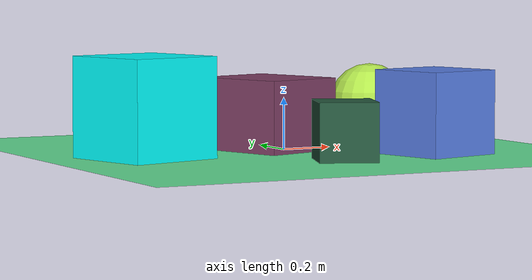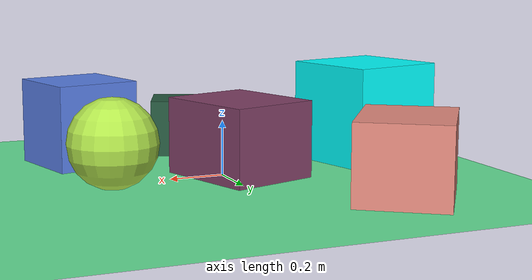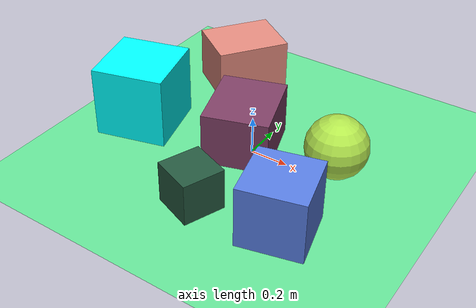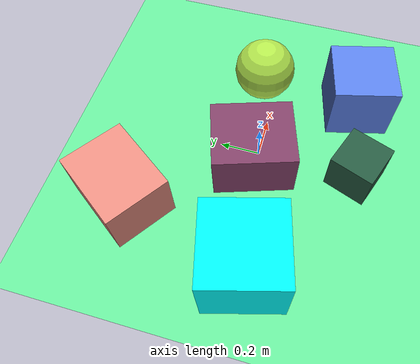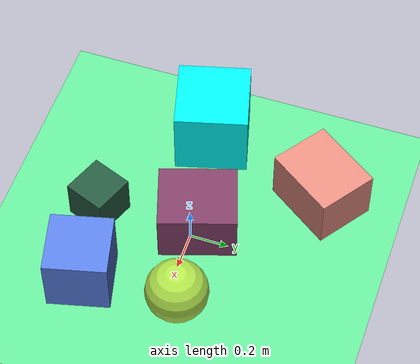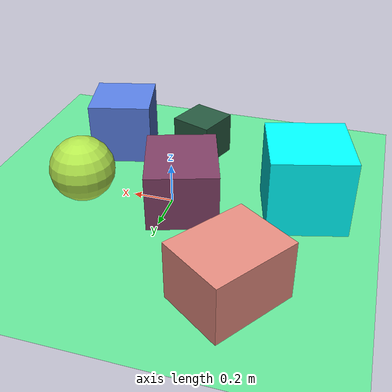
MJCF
<mujoco>
   <asset>
<texture type="skybox" builtin="gradient" rgb1="0.4 0.3 0.6" rgb2="0.3 0.3 0.8" width="256" height="256"/>
<texture name="gradient_0" builtin="gradient" rgb1="0.3 0.1 0.1" rgb2="0.0 0.6 0.4" width="200" height="200"/>
<texture name="gradient_1" builtin="gradient" rgb1="0.2 0.1 0.2" rgb2="0.8 0.4 0.6" width="200" height="200"/>
<texture name="gradient_2" builtin="gradient" rgb1="0.2 1.0 0.9" rgb2="0.5 0.0 0.9" width="200" height="200"/>
<texture name="flat_3" builtin="flat" rgb1="0.0 1.0 1.0" rgb2="0.0 1.0 1.0"  width="200" height="200"/>
<texture name="checker_4" builtin="checker" rgb1="1.0 0.6 0.2" rgb2="0.8 0.5 0.8" width="200" height="200"/>
<texture name="flat_5" builtin="flat" rgb1="0.7 0.9 0.3" rgb2="0.7 0.9 0.3"  width="200" height="200"/><material name="gradient_0_mat" reflectance="0" texture="gradient_0" texuniform="true"/>
<material name="gradient_1_mat" reflectance="0" texture="gradient_1" texuniform="true"/>
<material name="gradient_2_mat" reflectance="0" texture="gradient_2" texuniform="true"/>
<material name="flat_3_mat" reflectance="0" texture="flat_3" texuniform="true"/>
<material name="checker_4_mat" reflectance="0" texrepeat="4 4" texture="checker_4" texuniform="false" />
<material name="flat_5_mat" reflectance="0" texture="flat_5" texuniform="true"/>
   </asset>

   <worldbody>
      <light diffuse=".9 .9 .9" pos="0 0 3" dir="0 0 -1"/>
     <geom type="plane" size="1 1 0.1" rgba="0.4 0.9 0.6 1"/>
<geom type="box" pos="-0.01 -0.5 0.11" size="0.11 0.11 0.11" material="gradient_0_mat" euler="0 0 69" />
<geom type="box" pos="-0.06 0.02 0.14" size="0.17 0.2 0.14" material="gradient_1_mat" euler="0 0 18" />
<geom type="box" pos="0.42 -0.43 0.16" size="0.16 0.16 0.16" material="gradient_2_mat" euler="0 0 14" />
<geom type="box" pos="-0.63 -0.09 0.19" size="0.19 0.19 0.19" material="flat_3_mat" euler="0 0 15" />
<geom type="box" pos="-0.43 0.57 0.14" size="0.2 0.16 0.14" material="checker_4_mat" euler="0 0 55" />
<geom type="sphere" pos="0.43 0.08 0.16" size="0.16 0.16 0.16" material="flat_5_mat" euler="0 0 16" /><camera euler="60 0 180" fovy="60" name="camera1" pos="-0.2 -1.5 1"></camera>   </worldbody>
</mujoco>
